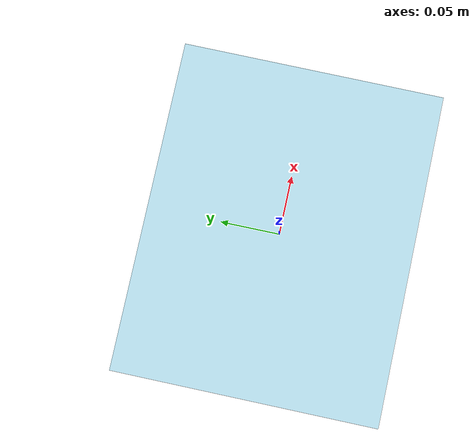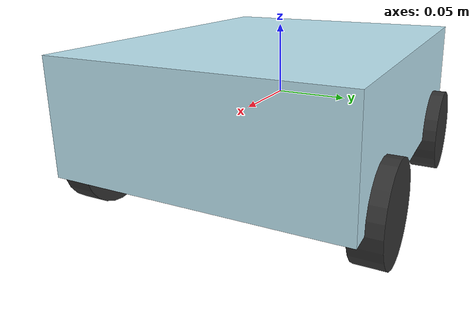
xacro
<?xml version="1.0"?>
<robot xmlns:xacro="http://www.ros.org/wiki/xacro" name="test_robot">
    <xacro:include filename="$(find agribot_simulation)/urdf/test_robot/mini_4wd_robot_test.xacro" />
    <xacro:include filename="$(find agribot_simulation)/urdf/test_robot/test_robot.gazebo.xacro" />
    <xacro:include filename="$(find agribot_simulation)/urdf/test_robot/test_robot.ros2_control.xacro" />

    <xacro:mini_4wd_robot_test_xacro />
    <xacro:test_robot_ros2_control />

</robot>

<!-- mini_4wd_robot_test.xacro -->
<robot xmlns:xacro="http://www.ros.org/wiki/xacro">

    <xacro:property name="M_PI" value="3.1415926" />

    <xacro:macro name="mini_4wd_robot_test_xacro">
        <link name="base_footprint" />

        <joint name="base_joint" type="fixed">
            <origin xyz="0 0 0" rpy="0 0 0" />
            <parent link="base_footprint" />
            <child link="base_link" />
        </joint>

        <link name="base_link">
            <inertial>
                <origin xyz="0 0 0" rpy="0 0 0" />
                <mass value="5" />
                <inertia
                    ixx="0.01933"
                    ixy="0"
                    ixz="0"
                    iyy="0.02871"
                    iyz="0"
                    izz="0.04271" />
            </inertial>
            <visual>
                <origin xyz="0 0 0" rpy="0 0 0" />
                <geometry>
                    <box size="0.25 0.20 0.08" />
                </geometry>
                <material name="base_material">
                    <color rgba="0.741176470588235 0.901960784313726 0.956862745098039 1" />
                </material>
            </visual>
            <collision>
                <origin xyz="0 0 0" rpy="0 0 0" />
                <geometry>
                    <box size="0.25 0.20 0.08" />
                </geometry>
            </collision>
        </link>

        <link name="left_wheel_link_virtual" />
        <link name="right_wheel_link_virtual" />

        <joint name="left_wheel_joint" type="continuous">
            <origin xyz="0 0.1 0" rpy="0 0 0" />
            <parent link="base_link" />
            <child link="left_wheel_link_virtual" />
            <axis xyz="0 1 0" />
        </joint>

        <joint name="right_wheel_joint" type="continuous">
            <origin xyz="0 -0.1 0" rpy="0 0 0" />
            <parent link="base_link" />
            <child link="right_wheel_link_virtual" />
            <axis xyz="0 1 0" />
        </joint>

        <link name="lf_wheel_link">
            <inertial>
                <origin xyz="0 0 0" rpy="0 0 0" />
                <mass value="0.2" />
                <inertia
                    ixx="8.53e-05"
                    ixy="0"
                    ixz="0"
                    iyy="1.024e-04"
                    iyz="0"
                    izz="8.53e-05" />
            </inertial>
            <visual>
                <origin xyz="0 0 0" rpy="${M_PI/2} 0 0" />
                <geometry>
                    <cylinder radius="0.032" length="0.02" />
                </geometry>
                <material name="wheel_material">
                    <color rgba="0.2 0.2 0.2 1" />
                </material>
            </visual>
            <collision>
                <origin xyz="0 0 0" rpy="${M_PI/2} 0 0" />
                <geometry>
                    <cylinder radius="0.032" length="0.02" />
                </geometry>
            </collision>
        </link>
        <joint name="lf_wheel_joint" type="continuous">
            <origin xyz="0.08 0.1 -0.04" rpy="0 0 0" />
            <parent link="base_link" />
            <child link="lf_wheel_link" />
            <axis xyz="0 1 0" />
        </joint>

        <link name="lb_wheel_link">
            <inertial>
                <origin xyz="0 0 0" rpy="0 0 0" />
                <mass value="0.2" />
                <inertia
                    ixx="8.53e-05"
                    ixy="0"
                    ixz="0"
                    iyy="1.024e-04"
                    iyz="0"
                    izz="8.53e-05" />
            </inertial>
            <visual>
                <origin xyz="0 0 0" rpy="${M_PI/2} 0 0" />
                <geometry>
                    <cylinder radius="0.032" length="0.02" />
                </geometry>
                <material name="wheel_material" />
            </visual>
            <collision>
                <origin xyz="0 0 0" rpy="${M_PI/2} 0 0" />
                <geometry>
                    <cylinder radius="0.032" length="0.02" />
                </geometry>
            </collision>
        </link>
        <joint name="lb_wheel_joint" type="continuous">
            <origin xyz="-0.08 0.1 -0.04" rpy="0 0 0" />
            <parent link="base_link" />
            <child link="lb_wheel_link" />
            <axis xyz="0 1 0" />
        </joint>

        <link name="rb_wheel_link">
            <inertial>
                <origin xyz="0 0 0" rpy="0 0 0" />
                <mass value="0.2" />
                <inertia
                    ixx="8.53e-05"
                    ixy="0"
                    ixz="0"
                    iyy="1.024e-04"
                    iyz="0"
                    izz="8.53e-05" />
            </inertial>
            <visual>
                <origin xyz="0 0 0" rpy="${M_PI/2} 0 0" />
                <geometry>
                    <cylinder radius="0.032" length="0.02" />
                </geometry>
                <material name="wheel_material" />
            </visual>
            <collision>
                <origin xyz="0 0 0" rpy="${M_PI/2} 0 0" />
                <geometry>
                    <cylinder radius="0.032" length="0.02" />
                </geometry>
            </collision>
        </link>
        <joint name="rb_wheel_joint" type="continuous">
            <origin xyz="-0.08 -0.1 -0.04" rpy="0 0 0" />
            <parent link="base_link" />
            <child link="rb_wheel_link" />
            <axis xyz="0 1 0" />
        </joint>

        <link name="rf_wheel_link">
            <inertial>
                <origin xyz="0 0 0" rpy="0 0 0" />
                <mass value="0.2" />
                <inertia
                    ixx="8.53e-05"
                    ixy="0"
                    ixz="0"
                    iyy="1.024e-04"
                    iyz="0"
                    izz="8.53e-05" />
            </inertial>
            <visual>
                <origin xyz="0 0 0" rpy="${M_PI/2} 0 0" />
                <geometry>
                    <cylinder radius="0.032" length="0.02" />
                </geometry>
                <material name="wheel_material" />
            </visual>
            <collision>
                <origin xyz="0 0 0" rpy="${M_PI/2} 0 0" />
                <geometry>
                    <cylinder radius="0.032" length="0.02" />
                </geometry>
            </collision>
        </link>
        <joint name="rf_wheel_joint" type="continuous">
            <origin xyz="0.08 -0.1 -0.04" rpy="0 0 0" />
            <parent link="base_link" />
            <child link="rf_wheel_link" />
            <axis xyz="0 1 0" />
        </joint>

    </xacro:macro>

</robot>
